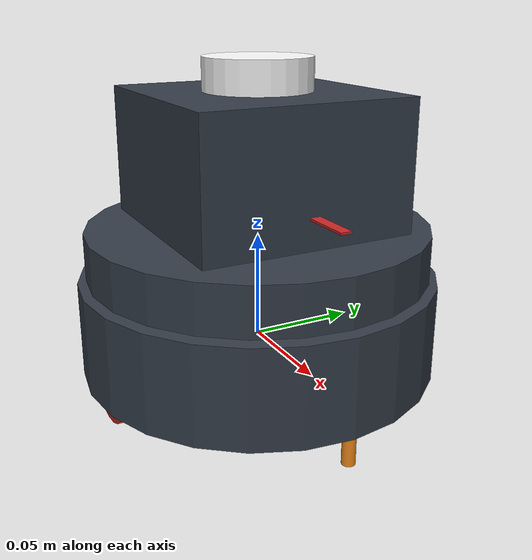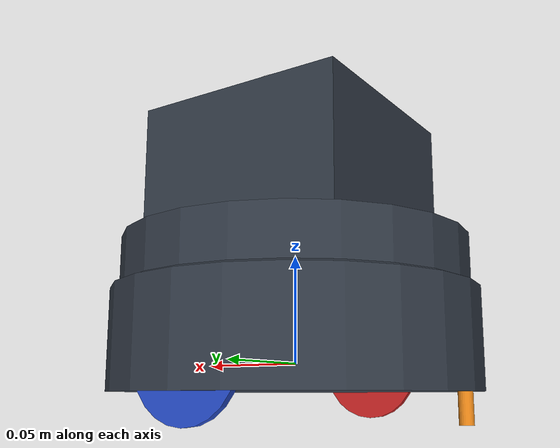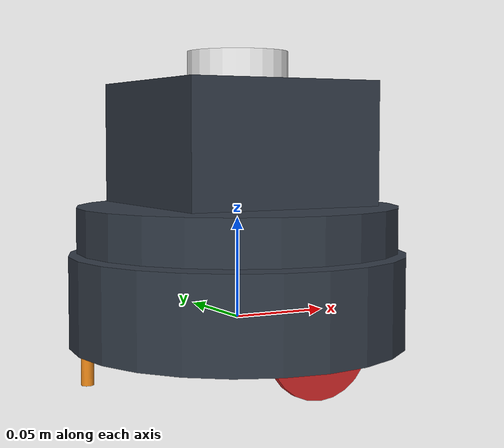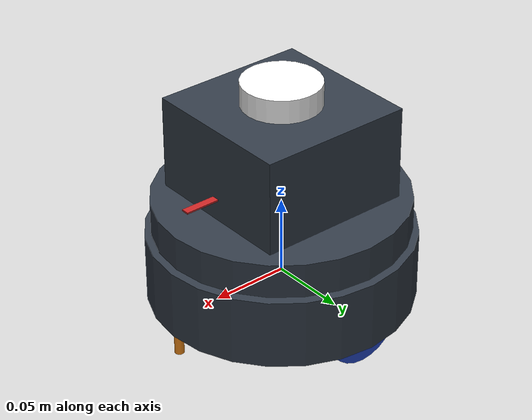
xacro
<?xml version="1.0"?>

<robot name="mtracker" xmlns:xacro="https://www.ros.org/wiki/xacro">
    <xacro:include filename="$(find mtracker)/urdf/materials.xacro" />
    <xacro:include filename="$(find mtracker)/urdf/mtracker.gazebo" />
    <xacro:include filename="$(find mtracker)/urdf/macro.xacro" />

    <link name="base_link">
        <!-- pose and inertial -->
        <pose>0 0 0.01 0 0 0</pose>
        <inertial>
            <mass value="1.8" />
            <origin xyz="0 0 0.01" />
            <inertia ixx="0.0395416666667" ixy="0" ixz="0" iyy="0.106208333333" iyz="0" izz="0.106208333333" />
        </inertial>

        <!-- body -->
        <collision name="collision_chassis">
            <geometry>
                <cylinder length="0.045" radius="0.084" />
            </geometry>
        </collision>
        <visual>
            <origin xyz="0 0 0.010" />
            <geometry>
                <cylinder length="0.045" radius="0.084" />
            </geometry>
            <material name="blue" />
        </visual>
        <!-- controller -->
        <visual>
            <origin xyz="0 0 0.045" />
            <geometry>
                <cylinder length="0.022" radius="0.080" />
            </geometry>
            <material name="blue" />
        </visual>
        <!-- intel nuc -->
        <visual>
            <origin xyz="0 0 0.087" />
            <geometry>
                <box size="0.1 0.1 0.06" />
            </geometry>
            <material name="blue" />
        </visual>
        <!-- caster front -->
        <collision name="caster_front_collision">
            <origin rpy="0 0 0" xyz="0.08 0 -0.015" />
            <geometry>
                <cylinder length="0.0215" radius="0.003" />
            </geometry>
            <surface>
                <friction>
                    <ode>
                        <mu>0.1</mu>
                        <mu2>0.1</mu2>
                        <slip1>1.0</slip1>
                        <slip2>1.0</slip2>
                    </ode>
                </friction>
            </surface>
        </collision>
        <visual name="caster_front_visual">
            <origin rpy="0 0 0" xyz="0.08 0 -0.015" />
            <geometry>
                <cylinder length="0.0215" radius="0.003" />
            </geometry>
        </visual>
        <!-- caster back -->
        <collision name="caster_back_collision">
            <origin rpy="0 0 0" xyz="-0.08 0 -0.015" />
            <geometry>
                <cylinder length="0.0215" radius="0.003" />
            </geometry>
            <surface>
                <friction>
                    <ode>
                        <mu>0.1</mu>
                        <mu2>0.1</mu2>
                        <slip1>1.0</slip1>
                        <slip2>1.0</slip2>
                    </ode>
                </friction>
            </surface>
        </collision>
        <visual name="caster_back_visual">
            <origin rpy="0 0 0" xyz="-0.08 0 -0.015" />
            <geometry>
                <cylinder length="0.0215" radius="0.003" />
            </geometry>
        </visual>
    </link>

    <!-- simple line to indicate front -->
    <link name="front_indicator">
        <parent link="base_link" />
        <visual>
            <origin rpy="0 0 0" xyz="0.05 0 0" />
            <geometry>
                <box size="0.045 0.005 0.001" />
            </geometry>
        </visual>
    </link>

    <joint name="front_indicatior_joint" type="fixed">
        <parent link="base_link" />
        <child link="front_indicator" />
        <origin rpy="0 0 0" xyz="0 0 0.071" />
    </joint>

    <!-- Laser  -->
    <link name="sensor_laser">
        <inertial>
            <origin xyz="0 0 0"/>
            <mass value="0.1" />
            <xacro:cylinder_inertia mass="0.1" r="0.05" l="0.1" />
        </inertial>
        <visual>
            <origin xyz="0 0 0" />
            <geometry>
                <cylinder radius="0.025" length="0.015"/>
            </geometry>
            <material name="white" />
        </visual>
        <collision>
            <origin xyz="0 0 0"/>
            <geometry>
                <cylinder radius="0.05" length="0.1"/>
            </geometry>
        </collision>
    </link>

    <joint name="joint_sensor_laser" type="fixed">
        <origin xyz="0 0 0.1245" />
        <parent link="base_link"/>
        <child link="sensor_laser"/>
    </joint>

    <!-- Create wheels -->
    <xacro:link_wheel name="link_right_wheel" />
    <xacro:joint_wheel name="joint_right_wheel" child="link_right_wheel" origin_xyz="0 0.075 0" />

    <xacro:link_wheel name="link_left_wheel" />
    <xacro:joint_wheel name="joint_left_wheel" child="link_left_wheel" origin_xyz="0 -0.075 0" />
</robot>

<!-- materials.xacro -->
<robot name="mtracker" xmlns:xacro="https://www.ros.org/wiki/xacro">
    <material name="black">
    <color rgba="0.0 0.0 0.0 1.0"/>
  </material>
  <material name="blue">
    <color rgba="0.203125 0.23828125 0.28515625 1.0"/>
  </material>
  <material name="green">
    <color rgba="0.0 0.8 0.0 1.0"/>
  </material>
  <material name="grey">
    <color rgba="0.2 0.2 0.2 1.0"/>
  </material>
  <material name="orange">
    <color rgba="1.0 0.423529411765 0.0392156862745 1.0"/>
  </material>
  <material name="brown">
    <color rgba="0.870588235294 0.811764705882 0.764705882353 1.0"/>
  </material>
  <material name="red">
    <color rgba="0.80078125 0.12890625 0.1328125 1.0"/>
  </material>
  <material name="white">
    <color rgba="1.0 1.0 1.0 1.0"/>
  </material>

</robot>

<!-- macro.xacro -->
<robot xmlns:xacro="https://www.ros.org/wiki/xacro">
    <xacro:macro name="link_wheel" params="name">
        <link name="${name}">
            <inertial>
                <mass value="0.1"/>
                <origin rpy="0 1.5707 1.5707" xyz="0 0 0"/>
                <inertia ixx="0.000526666666667" ixy="0" ixz="0" iyy="0.000526666666667" iyz="0" izz="0.001"/>
            </inertial>
            <collision name="${name}_collision">
              <origin rpy="0 1.5707 1.5707" xyz="0 0 0"/>
              <geometry>
                <cylinder length="0.003" radius="0.026"/>
              </geometry>
            </collision>
            <visual name="${name}_visual">
              <origin rpy="0 1.5707 1.5707" xyz="0 0 0"/>
              <geometry>
                <cylinder length="0.003" radius="0.026"/>
              </geometry>
            </visual>
        </link>
    </xacro:macro>

    <xacro:macro name="joint_wheel" params="name child origin_xyz">
      <joint name="${name}" type="continuous">
        <origin rpy="0 0 0" xyz="${origin_xyz}"/>
        <child link="${child}"/>
        <parent link="base_link"/>
        <axis xyz="0 1 0"/>
        <limit effort="10000" velocity="1000"/>
        <joint_properties damping="1.0" friction="1.0"/>
      </joint>
    </xacro:macro>

    <!-- Laser scanner -->
    <xacro:macro name="cylinder_inertia" params="mass r l">
      <inertia ixx="${mass*(3*r*r+l*l)/12}" ixy = "0" ixz = "0"
               iyy="${mass*(3*r*r+l*l)/12}" iyz = "0"
               izz="${mass*(r*r)/2}"/>
    </xacro:macro>
</robot>
